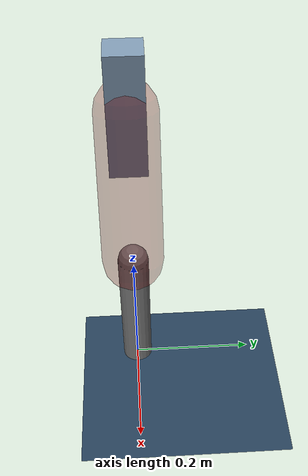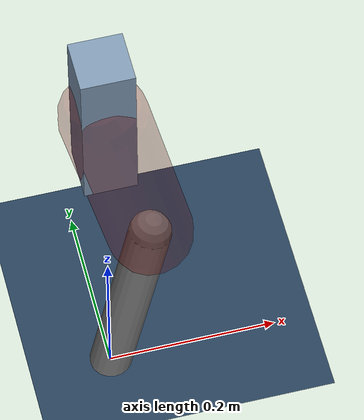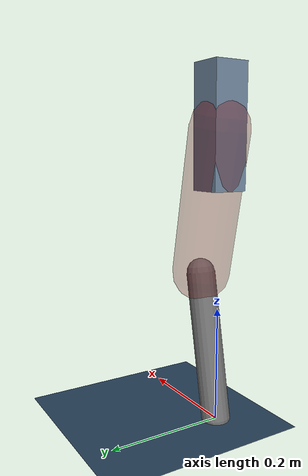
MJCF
<mujoco model="Hopper2D">
	<compiler inertiafromgeom="true" angle="radian" />
	<option timestep="0.001" integrator="implicit" cone="elliptic" solver="Newton" tolerance="1e-10" />

	<default>
		<geom contype="1" conaffinity="1" condim="3" friction="2 0.005 0.0001" solref="0.005 1" />
		<joint limited="true" damping="0.1" />
	</default>

	<asset>
		<texture name="skybox" type="skybox" builtin="gradient" rgb1=".4 .6 .8" rgb2="0 0 0" width="800" height="800" />
		<texture name="grid" type="2d" builtin="checker" rgb1=".1 .2 .3" rgb2=".2 .3 .4" width="300" height="300" mark="edge" markrgb=".2 .3 .4" />
		<material name="ground" texture="grid" texrepeat="1 1" texuniform="true" reflectance="0.1" />
		<material name="leg" rgba="0.5 0.6 0.7 1" />
	</asset>

	<worldbody>

		<geom name="floor" type="plane" size="5 5 0.25" material="ground" />

		<light directional="false" diffuse="0.8 0.8 0.8" specular="0.3 0.3 0.3" pos="0 0 2" dir="0 0 -1" />
		<light mode="targetbodycom" target="base" directional="false" diffuse="0.8 0.8 0.8" specular="0.3 0.3 0.3" pos="0 0 2" dir="0 0 -1" />

		<camera name="fixed" pos="0 -2 1" xyaxes="1 0 0 0 0 1" />
		<camera name="tracking" mode="trackcom" pos="0 -3 1" />

		<body name="root" pos="0 0 0.49964439658082294">
			<joint name="slide_x" type="slide" axis="1 0 0" range="-100 100" />
			<joint name="slide_z" type="slide" axis="0 0 1" range="0 10" />

			<body name="base" pos="0 0 0">
				<geom name="torso" type="box" size="0.03 0.03 0.1" mass="1.664" material="leg" />

				<body name="link1" pos="0 0 0" euler="0 1.3686105415222534 0">
					<joint type="hinge" axis="0 -1 0" pos="0 0 0" name="hinge1" limited="true" range="-3.14 3.14" stiffness="0" damping="0.1" />
					<geom name="thigh" type="capsule" fromto="0 0 0 0.2500992893645971 0 0" size="0.05" rgba="0.5 0 0 0.3" mass="0.8566581523479524" />

					<body name="link2" pos="0.2500992893645971 0 0" euler="0 0.3969169657477026 0">
						<joint type="hinge" axis="0 -1 0" pos="0 0 0" name="hinge2" limited="true" range="-3.14 3.14" stiffness="0" damping="0.1" />
						<geom name="shank" type="capsule" fromto="0 0 0 0.25954510721622587 0 0" size="0.025" mass="0.4503360857729807" />

					</body>
				</body>
			</body>
		</body>
	</worldbody>

	<actuator>
		<motor name="torque1" joint="hinge1" ctrlrange="-13.425063564805924 13.425063564805924" ctrllimited="true" gear="1" />
		<motor name="torque2" joint="hinge2" ctrlrange="-41.30730284218457 41.30730284218457" ctrllimited="true" gear="1" />
	</actuator>
</mujoco>
